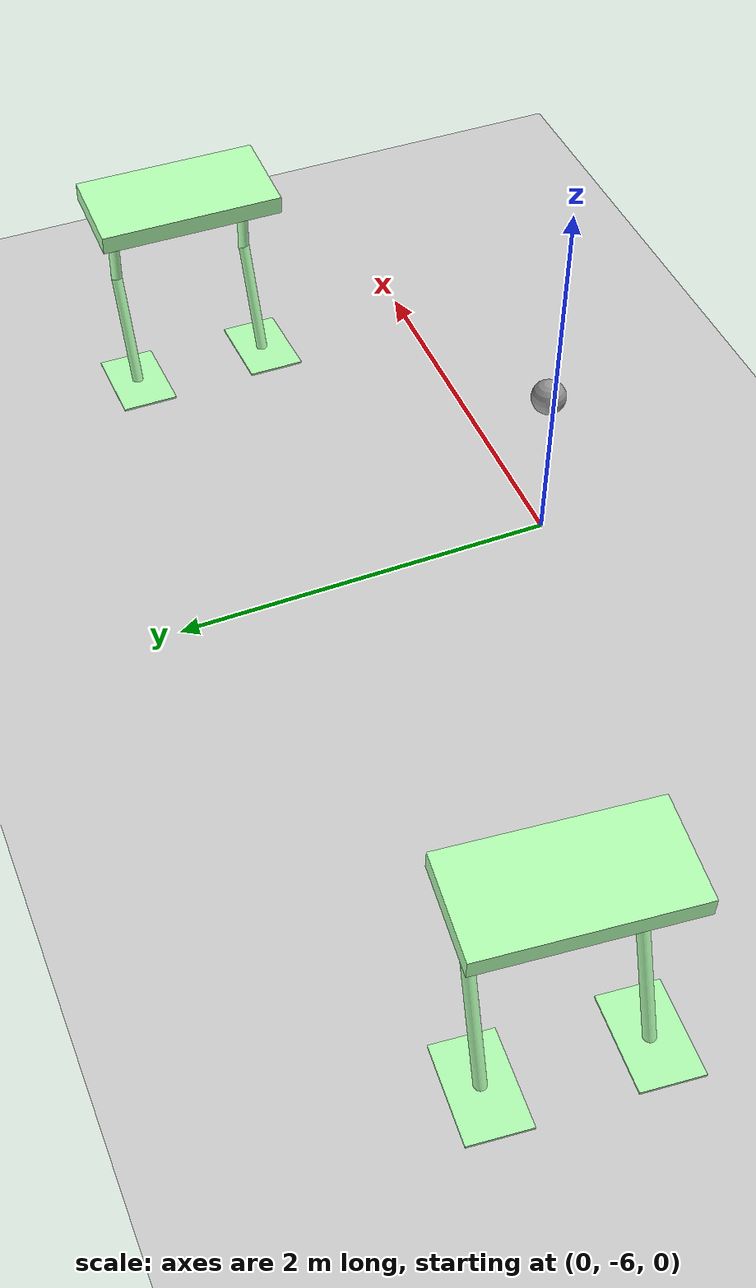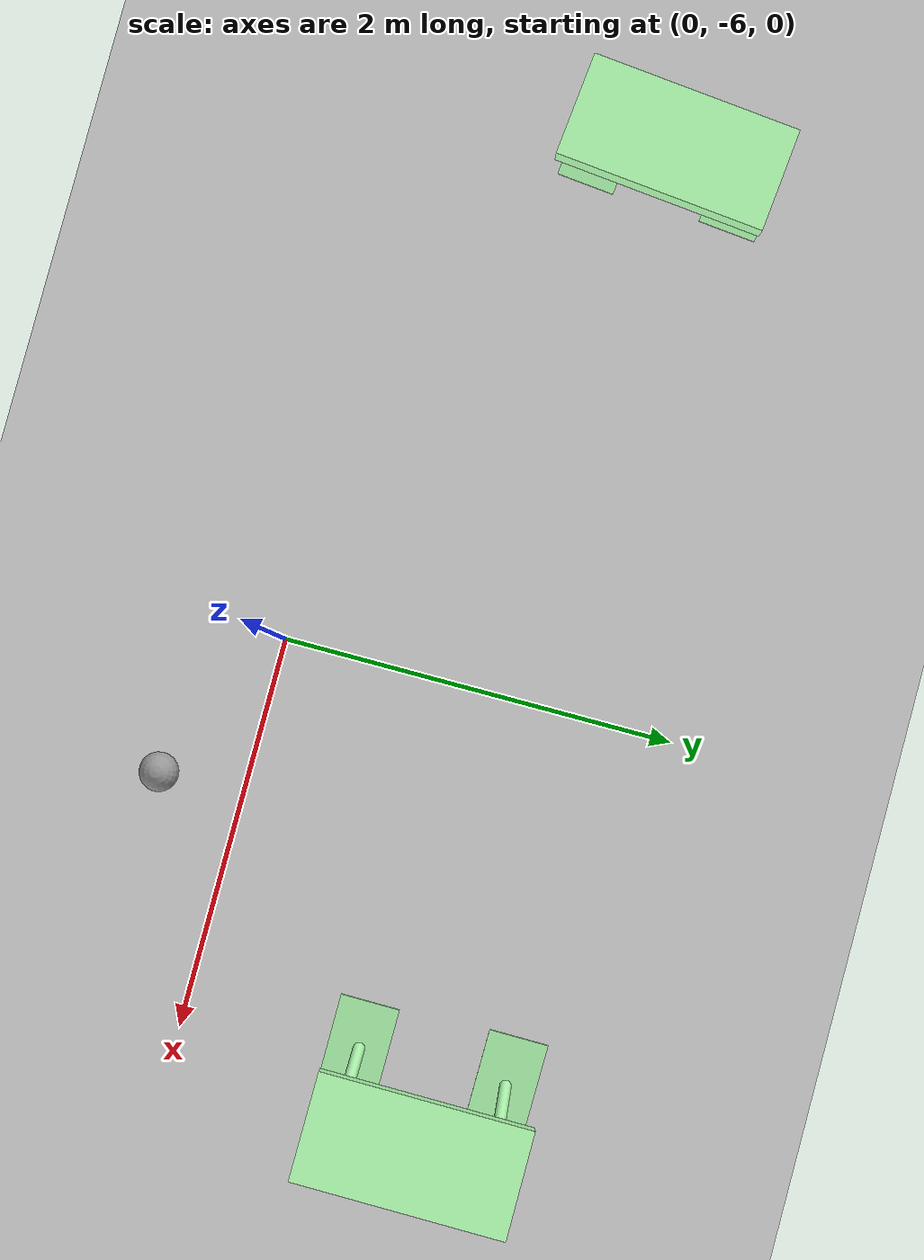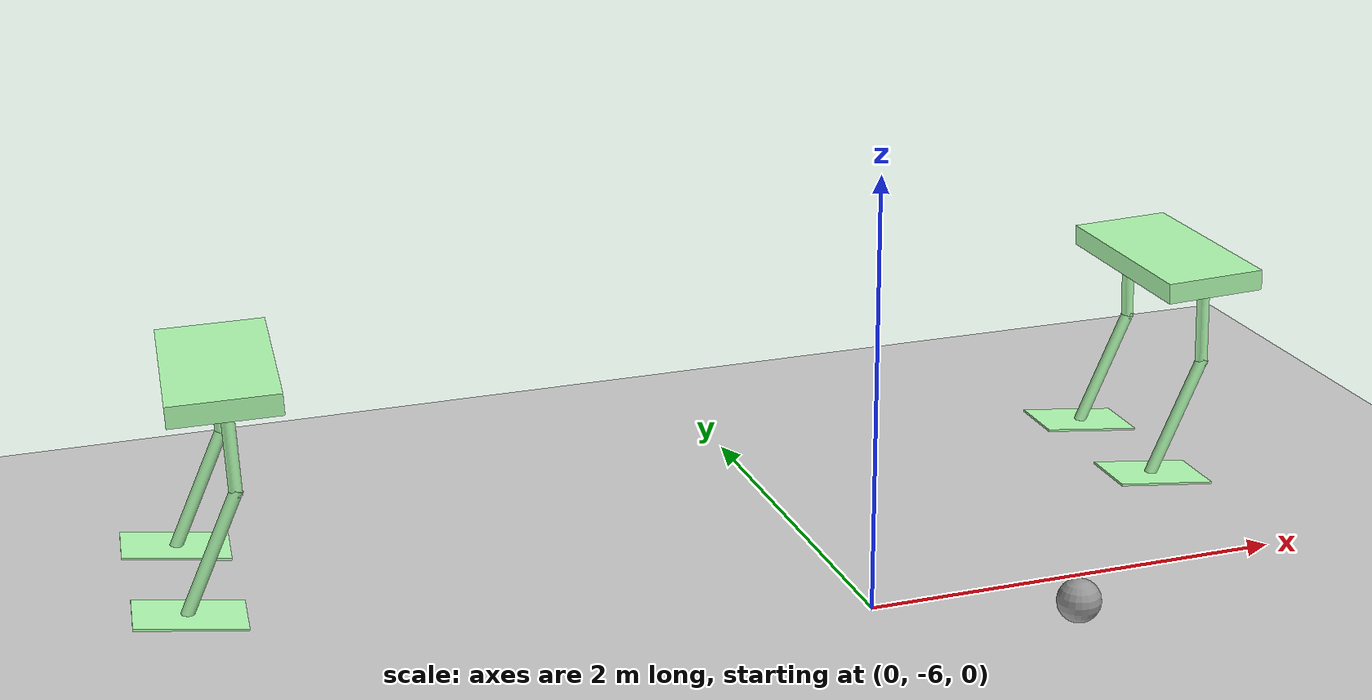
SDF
<sdf version="1.7">
 <world name="default">
  <model name="ground_plane">
   <static>1</static>
   <link name="link">
    <collision name="collision">
     <geometry><plane><normal>0 0 1</normal><size>100 100</size></plane></geometry>
     <surface>
      <contact><collide_bitmask>65535</collide_bitmask></contact>
      <friction><ode><mu>100</mu><mu2>50</mu2></ode></friction>
     </surface>
    </collision>
    <visual name="visual">
     <cast_shadows>0</cast_shadows>
     <geometry><plane><normal>0 0 1</normal><size>100 100</size></plane></geometry>
     <material>
      <script><uri>file://media/materials/scripts/gazebo.material</uri><name>Gazebo/Grey</name></script>
     </material>
    </visual>
   </link>
  </model>
  <model name="HumanoidRobot">
   <link name="link_0">
    <inertial>
     <mass>1</mass>
     <inertia>
      <ixx>0.166667</ixx>
      <ixy>0</ixy>
      <ixz>0</ixz>
      <iyy>0.166667</iyy>
      <iyz>0</iyz>
      <izz>0.166667</izz>
     </inertia>
    </inertial>
    <pose>-0.065088 -0.378675 -0.434007 0 -0 1.5707</pose>
    <visual name="visual">
     <geometry><box><size>0.3 0.5 0.01</size></box></geometry>
     <material>
      <lighting>1</lighting>
      <script><uri>file://media/materials/scripts/gazebo.material</uri><name>Gazebo/Grey</name></script>
      <shader type="pixel"><normal_map>__default__</normal_map></shader>
      <ambient>0.3 1 0.3 1</ambient>
      <diffuse>0.7 1 0.7 1</diffuse>
      <specular>0.01 1 0.01 1</specular>
      <emissive>0 1 0 1</emissive>
     </material>
    </visual>
    <collision name="collision">
     <geometry><box><size>0.3 0.5 0.01</size></box></geometry>
     <surface>
      <friction>
       <ode><mu>1</mu><mu2>1</mu2><fdir1>0 0 0</fdir1><slip1>0</slip1><slip2>0</slip2></ode>
       <torsional>
        <coefficient>1</coefficient>
        <patch_radius>0</patch_radius>
        <surface_radius>0</surface_radius>
        <use_patch_radius>1</use_patch_radius>
        <ode><slip>0</slip></ode>
       </torsional>
      </friction>
      <bounce><restitution_coefficient>0</restitution_coefficient><threshold>1e+06</threshold></bounce>
      <contact>
       <collide_without_contact>0</collide_without_contact>
       <collide_without_contact_bitmask>1</collide_without_contact_bitmask>
       <collide_bitmask>1</collide_bitmask>
       <ode>
        <soft_cfm>0</soft_cfm>
        <soft_erp>0.2</soft_erp>
        <kp>1e+13</kp>
        <kd>1</kd>
        <max_vel>0.01</max_vel>
        <min_depth>0</min_depth>
       </ode>
       <bullet>
        <split_impulse>1</split_impulse>
        <split_impulse_penetration_threshold>-0.01</split_impulse_penetration_threshold>
        <soft_cfm>0</soft_cfm>
        <soft_erp>0.2</soft_erp>
        <kp>1e+13</kp>
        <kd>1</kd>
       </bullet>
      </contact>
     </surface>
    </collision>
   </link>
   <link name="link_0_clone">
    <inertial>
     <mass>1</mass>
     <inertia>
      <ixx>0.166667</ixx>
      <ixy>0</ixy>
      <ixz>0</ixz>
      <iyy>0.166667</iyy>
      <iyz>0</iyz>
      <izz>0.166667</izz>
     </inertia>
    </inertial>
    <pose>-0.09199 0.377512 -0.434007 0 -0 1.5707</pose>
    <visual name="visual">
     <geometry><box><size>0.3 0.5 0.01</size></box></geometry>
     <material>
      <lighting>1</lighting>
      <script><uri>file://media/materials/scripts/gazebo.material</uri><name>Gazebo/Grey</name></script>
      <shader type="pixel"><normal_map>__default__</normal_map></shader>
      <ambient>0.3 1 0.3 1</ambient>
      <diffuse>0.7 1 0.7 1</diffuse>
      <specular>0.01 1 0.01 1</specular>
      <emissive>0 1 0 1</emissive>
     </material>
    </visual>
    <collision name="collision">
     <geometry><box><size>0.3 0.5 0.01</size></box></geometry>
     <surface>
      <friction>
       <ode><mu>1</mu><mu2>1</mu2><fdir1>0 0 0</fdir1><slip1>0</slip1><slip2>0</slip2></ode>
       <torsional>
        <coefficient>1</coefficient>
        <patch_radius>0</patch_radius>
        <surface_radius>0</surface_radius>
        <use_patch_radius>1</use_patch_radius>
        <ode><slip>0</slip></ode>
       </torsional>
      </friction>
      <bounce><restitution_coefficient>0</restitution_coefficient><threshold>1e+06</threshold></bounce>
      <contact>
       <collide_without_contact>0</collide_without_contact>
       <collide_without_contact_bitmask>1</collide_without_contact_bitmask>
       <collide_bitmask>1</collide_bitmask>
       <ode>
        <soft_cfm>0</soft_cfm>
        <soft_erp>0.2</soft_erp>
        <kp>1e+13</kp>
        <kd>1</kd>
        <max_vel>0.01</max_vel>
        <min_depth>0</min_depth>
       </ode>
       <bullet>
        <split_impulse>1</split_impulse>
        <split_impulse_penetration_threshold>-0.01</split_impulse_penetration_threshold>
        <soft_cfm>0</soft_cfm>
        <soft_erp>0.2</soft_erp>
        <kp>1e+13</kp>
        <kd>1</kd>
       </bullet>
      </contact>
     </surface>
    </collision>
   </link>
   <link name="link_1">
    <inertial>
     <mass>1</mass>
     <inertia><ixx>0.145833</ixx><ixy>0</ixy><ixz>0</ixz><iyy>0.145833</iyy><iyz>0</iyz><izz>0.125</izz></inertia>
    </inertial>
    <pose>0.013192 -0.372488 -0.14743 0 0.3 0</pose>
    <visual name="visual">
     <geometry><cylinder><radius>0.03</radius><length>0.65</length></cylinder></geometry>
     <material>
      <lighting>1</lighting>
      <script><uri>file://media/materials/scripts/gazebo.material</uri><name>Gazebo/Grey</name></script>
      <shader type="pixel"><normal_map>__default__</normal_map></shader>
      <ambient>0.3 1 0.3 1</ambient>
      <diffuse>0.7 1 0.7 1</diffuse>
      <specular>0.01 1 0.01 1</specular>
      <emissive>0 1 0 1</emissive>
     </material>
    </visual>
    <collision name="collision">
     <geometry><cylinder><radius>0.03</radius><length>0.65</length></cylinder></geometry>
     <surface>
      <friction>
       <ode><mu>1</mu><mu2>1</mu2><fdir1>0 0 0</fdir1><slip1>0</slip1><slip2>0</slip2></ode>
       <torsional>
        <coefficient>1</coefficient>
        <patch_radius>0</patch_radius>
        <surface_radius>0</surface_radius>
        <use_patch_radius>1</use_patch_radius>
        <ode><slip>0</slip></ode>
       </torsional>
      </friction>
      <bounce><restitution_coefficient>0</restitution_coefficient><threshold>1e+06</threshold></bounce>
      <contact>
       <collide_without_contact>0</collide_without_contact>
       <collide_without_contact_bitmask>1</collide_without_contact_bitmask>
       <collide_bitmask>1</collide_bitmask>
       <ode>
        <soft_cfm>0</soft_cfm>
        <soft_erp>0.2</soft_erp>
        <kp>1e+13</kp>
        <kd>1</kd>
        <max_vel>0.01</max_vel>
        <min_depth>0</min_depth>
       </ode>
       <bullet>
        <split_impulse>1</split_impulse>
        <split_impulse_penetration_threshold>-0.01</split_impulse_penetration_threshold>
        <soft_cfm>0</soft_cfm>
        <soft_erp>0.2</soft_erp>
        <kp>1e+13</kp>
        <kd>1</kd>
       </bullet>
      </contact>
     </surface>
    </collision>
   </link>
   <link name="link_1_clone">
    <inertial>
     <mass>1</mass>
     <inertia><ixx>0.145833</ixx><ixy>0</ixy><ixz>0</ixz><iyy>0.145833</iyy><iyz>0</iyz><izz>0.125</izz></inertia>
    </inertial>
    <pose>-0.000905 0.377512 -0.148984 0 0.3 0</pose>
    <visual name="visual">
     <geometry><cylinder><radius>0.03</radius><length>0.65</length></cylinder></geometry>
     <material>
      <lighting>1</lighting>
      <script><uri>file://media/materials/scripts/gazebo.material</uri><name>Gazebo/Grey</name></script>
      <shader type="pixel"><normal_map>__default__</normal_map></shader>
      <ambient>0.3 1 0.3 1</ambient>
      <diffuse>0.7 1 0.7 1</diffuse>
      <specular>0.01 1 0.01 1</specular>
      <emissive>0 1 0 1</emissive>
     </material>
    </visual>
    <collision name="collision">
     <geometry><cylinder><radius>0.03</radius><length>0.65</length></cylinder></geometry>
     <surface>
      <friction>
       <ode><mu>1</mu><mu2>1</mu2><fdir1>0 0 0</fdir1><slip1>0</slip1><slip2>0</slip2></ode>
       <torsional>
        <coefficient>1</coefficient>
        <patch_radius>0</patch_radius>
        <surface_radius>0</surface_radius>
        <use_patch_radius>1</use_patch_radius>
        <ode><slip>0</slip></ode>
       </torsional>
      </friction>
      <bounce><restitution_coefficient>0</restitution_coefficient><threshold>1e+06</threshold></bounce>
      <contact>
       <collide_without_contact>0</collide_without_contact>
       <collide_without_contact_bitmask>1</collide_without_contact_bitmask>
       <collide_bitmask>1</collide_bitmask>
       <ode>
        <soft_cfm>0</soft_cfm>
        <soft_erp>0.2</soft_erp>
        <kp>1e+13</kp>
        <kd>1</kd>
        <max_vel>0.01</max_vel>
        <min_depth>0</min_depth>
       </ode>
       <bullet>
        <split_impulse>1</split_impulse>
        <split_impulse_penetration_threshold>-0.01</split_impulse_penetration_threshold>
        <soft_cfm>0</soft_cfm>
        <soft_erp>0.2</soft_erp>
        <kp>1e+13</kp>
        <kd>1</kd>
       </bullet>
      </contact>
     </surface>
    </collision>
   </link>
   <link name="link_1_clone_0">
    <inertial>
     <mass>1</mass>
     <inertia><ixx>0.145833</ixx><ixy>0</ixy><ixz>0</ixz><iyy>0.145833</iyy><iyz>0</iyz><izz>0.125</izz></inertia>
    </inertial>
    <pose>0.077052 -0.370832 0.330686 0 -0.15 0</pose>
    <visual name="visual">
     <geometry><cylinder><radius>0.03</radius><length>0.4</length></cylinder></geometry>
     <material>
      <lighting>1</lighting>
      <script><uri>file://media/materials/scripts/gazebo.material</uri><name>Gazebo/Grey</name></script>
      <shader type="pixel"><normal_map>__default__</normal_map></shader>
      <ambient>0.3 1 0.3 1</ambient>
      <diffuse>0.7 1 0.7 1</diffuse>
      <specular>0.01 1 0.01 1</specular>
      <emissive>0 1 0 1</emissive>
     </material>
    </visual>
    <collision name="collision">
     <geometry><cylinder><radius>0.03</radius><length>0.4</length></cylinder></geometry>
     <surface>
      <friction>
       <ode><mu>1</mu><mu2>1</mu2><fdir1>0 0 0</fdir1><slip1>0</slip1><slip2>0</slip2></ode>
       <torsional>
        <coefficient>1</coefficient>
        <patch_radius>0</patch_radius>
        <surface_radius>0</surface_radius>
        <use_patch_radius>1</use_patch_radius>
        <ode><slip>0</slip></ode>
       </torsional>
      </friction>
      <bounce><restitution_coefficient>0</restitution_coefficient><threshold>1e+06</threshold></bounce>
      <contact>
       <collide_without_contact>0</collide_without_contact>
       <collide_without_contact_bitmask>1</collide_without_contact_bitmask>
       <collide_bitmask>1</collide_bitmask>
       <ode>
        <soft_cfm>0</soft_cfm>
        <soft_erp>0.2</soft_erp>
        <kp>1e+13</kp>
        <kd>1</kd>
        <max_vel>0.01</max_vel>
        <min_depth>0</min_depth>
       </ode>
       <bullet>
        <split_impulse>1</split_impulse>
        <split_impulse_penetration_threshold>-0.01</split_impulse_penetration_threshold>
        <soft_cfm>0</soft_cfm>
        <soft_erp>0.2</soft_erp>
        <kp>1e+13</kp>
        <kd>1</kd>
       </bullet>
      </contact>
     </surface>
    </collision>
   </link>
   <link name="link_1_clone_0_clone">
    <inertial>
     <mass>1</mass>
     <inertia><ixx>0.145833</ixx><ixy>0</ixy><ixz>0</ixz><iyy>0.145833</iyy><iyz>0</iyz><izz>0.125</izz></inertia>
    </inertial>
    <pose>0.061622 0.377512 0.329192 0 -0.15 0</pose>
    <visual name="visual">
     <geometry><cylinder><radius>0.03</radius><length>0.4</length></cylinder></geometry>
     <material>
      <lighting>1</lighting>
      <script><uri>file://media/materials/scripts/gazebo.material</uri><name>Gazebo/Grey</name></script>
      <shader type="pixel"><normal_map>__default__</normal_map></shader>
      <ambient>0.3 1 0.3 1</ambient>
      <diffuse>0.7 1 0.7 1</diffuse>
      <specular>0.01 1 0.01 1</specular>
      <emissive>0 1 0 1</emissive>
     </material>
    </visual>
    <collision name="collision">
     <geometry><cylinder><radius>0.03</radius><length>0.4</length></cylinder></geometry>
     <surface>
      <friction>
       <ode><mu>1</mu><mu2>1</mu2><fdir1>0 0 0</fdir1><slip1>0</slip1><slip2>0</slip2></ode>
       <torsional>
        <coefficient>1</coefficient>
        <patch_radius>0</patch_radius>
        <surface_radius>0</surface_radius>
        <use_patch_radius>1</use_patch_radius>
        <ode><slip>0</slip></ode>
       </torsional>
      </friction>
      <bounce><restitution_coefficient>0</restitution_coefficient><threshold>1e+06</threshold></bounce>
      <contact>
       <collide_without_contact>0</collide_without_contact>
       <collide_without_contact_bitmask>1</collide_without_contact_bitmask>
       <collide_bitmask>1</collide_bitmask>
       <ode>
        <soft_cfm>0</soft_cfm>
        <soft_erp>0.2</soft_erp>
        <kp>1e+13</kp>
        <kd>1</kd>
        <max_vel>0.01</max_vel>
        <min_depth>0</min_depth>
       </ode>
       <bullet>
        <split_impulse>1</split_impulse>
        <split_impulse_penetration_threshold>-0.01</split_impulse_penetration_threshold>
        <soft_cfm>0</soft_cfm>
        <soft_erp>0.2</soft_erp>
        <kp>1e+13</kp>
        <kd>1</kd>
       </bullet>
      </contact>
     </surface>
    </collision>
   </link>
   <link name="link_2">
    <inertial>
     <mass>1</mass>
     <inertia>
      <ixx>0.166667</ixx>
      <ixy>0</ixy>
      <ixz>0</ixz>
      <iyy>0.166667</iyy>
      <iyz>0</iyz>
      <izz>0.166667</izz>
     </inertia>
    </inertial>
    <pose>0.028263 -0.01054 0.576151 0 -0.149993 0</pose>
    <visual name="visual">
     <geometry><box><size>0.5 1 0.1</size></box></geometry>
     <material>
      <lighting>1</lighting>
      <script><uri>file://media/materials/scripts/gazebo.material</uri><name>Gazebo/Grey</name></script>
      <shader type="pixel"><normal_map>__default__</normal_map></shader>
      <ambient>0.3 1 0.3 1</ambient>
      <diffuse>0.7 1 0.7 1</diffuse>
      <specular>0.01 1 0.01 1</specular>
      <emissive>0 0 0 1</emissive>
     </material>
    </visual>
    <collision name="collision">
     <geometry><box><size>0.5 1 0.05</size></box></geometry>
     <surface>
      <friction>
       <ode><mu>1</mu><mu2>1</mu2><fdir1>0 0 0</fdir1><slip1>0</slip1><slip2>0</slip2></ode>
       <torsional>
        <coefficient>1</coefficient>
        <patch_radius>0</patch_radius>
        <surface_radius>0</surface_radius>
        <use_patch_radius>1</use_patch_radius>
        <ode><slip>0</slip></ode>
       </torsional>
      </friction>
      <bounce><restitution_coefficient>0</restitution_coefficient><threshold>1e+06</threshold></bounce>
      <contact>
       <collide_without_contact>0</collide_without_contact>
       <collide_without_contact_bitmask>1</collide_without_contact_bitmask>
       <collide_bitmask>1</collide_bitmask>
       <ode>
        <soft_cfm>0</soft_cfm>
        <soft_erp>0.2</soft_erp>
        <kp>1e+13</kp>
        <kd>1</kd>
        <max_vel>0.01</max_vel>
        <min_depth>0</min_depth>
       </ode>
       <bullet>
        <split_impulse>1</split_impulse>
        <split_impulse_penetration_threshold>-0.01</split_impulse_penetration_threshold>
        <soft_cfm>0</soft_cfm>
        <soft_erp>0.2</soft_erp>
        <kp>1e+13</kp>
        <kd>1</kd>
       </bullet>
      </contact>
     </surface>
    </collision>
   </link>
   <joint name="link_0_JOINT_0" type="fixed">
    <parent>link_0</parent>
    <child>link_1</child>
    <physics>
     <ode><limit><cfm>0</cfm><erp>0.2</erp></limit><suspension><cfm>0</cfm><erp>0.2</erp></suspension></ode>
    </physics>
   </joint>
   <joint name="link_0_clone_JOINT_1" type="fixed">
    <parent>link_0_clone</parent>
    <child>link_1_clone</child>
    <physics>
     <ode><limit><cfm>0</cfm><erp>0.2</erp></limit><suspension><cfm>0</cfm><erp>0.2</erp></suspension></ode>
    </physics>
   </joint>
   <joint name="link_1_JOINT_2" type="fixed">
    <parent>link_1</parent>
    <child>link_1_clone_0</child>
    <physics>
     <ode><limit><cfm>0</cfm><erp>0.2</erp></limit><suspension><cfm>0</cfm><erp>0.2</erp></suspension></ode>
    </physics>
   </joint>
   <joint name="link_1_clone_JOINT_3" type="fixed">
    <parent>link_1_clone</parent>
    <child>link_1_clone_0_clone</child>
    <physics>
     <ode><limit><cfm>0</cfm><erp>0.2</erp></limit><suspension><cfm>0</cfm><erp>0.2</erp></suspension></ode>
    </physics>
   </joint>
   <joint name="link_2_JOINT_5" type="fixed">
    <parent>link_2</parent>
    <child>link_1_clone_0_clone</child>
    <physics>
     <ode><limit><cfm>0</cfm><erp>0.2</erp></limit><suspension><cfm>0</cfm><erp>0.2</erp></suspension></ode>
    </physics>
   </joint>
   <joint name="link_2_JOINT_6" type="fixed">
    <parent>link_2</parent>
    <child>link_1_clone_0</child>
    <physics>
     <ode><limit><cfm>0</cfm><erp>0.2</erp></limit><suspension><cfm>0</cfm><erp>0.2</erp></suspension></ode>
    </physics>
   </joint>
   <static>0</static>
   <pose>-2.72379 -4.75242 0.457378 -0.000108 0.115577 -0.101636</pose>
  </model>
  <model name="HumanoidRobot_0">
   <link name="link_0">
    <inertial>
     <mass>1</mass>
     <inertia>
      <ixx>0.166667</ixx>
      <ixy>0</ixy>
      <ixz>0</ixz>
      <iyy>0.166667</iyy>
      <iyz>0</iyz>
      <izz>0.166667</izz>
     </inertia>
    </inertial>
    <pose>-0.065088 -0.378675 -0.434007 0 -0 1.5707</pose>
    <visual name="visual">
     <geometry><box><size>0.3 0.5 0.01</size></box></geometry>
     <material>
      <lighting>1</lighting>
      <script><uri>file://media/materials/scripts/gazebo.material</uri><name>Gazebo/Grey</name></script>
      <shader type="pixel"><normal_map>__default__</normal_map></shader>
      <ambient>0.3 1 0.3 1</ambient>
      <diffuse>0.7 1 0.7 1</diffuse>
      <specular>0.01 1 0.01 1</specular>
      <emissive>0 1 0 1</emissive>
     </material>
    </visual>
    <collision name="collision">
     <geometry><box><size>0.3 0.5 0.01</size></box></geometry>
     <surface>
      <friction>
       <ode><mu>1</mu><mu2>1</mu2><fdir1>0 0 0</fdir1><slip1>0</slip1><slip2>0</slip2></ode>
       <torsional>
        <coefficient>1</coefficient>
        <patch_radius>0</patch_radius>
        <surface_radius>0</surface_radius>
        <use_patch_radius>1</use_patch_radius>
        <ode><slip>0</slip></ode>
       </torsional>
      </friction>
      <bounce><restitution_coefficient>0</restitution_coefficient><threshold>1e+06</threshold></bounce>
      <contact>
       <collide_without_contact>0</collide_without_contact>
       <collide_without_contact_bitmask>1</collide_without_contact_bitmask>
       <collide_bitmask>1</collide_bitmask>
       <ode>
        <soft_cfm>0</soft_cfm>
        <soft_erp>0.2</soft_erp>
        <kp>1e+13</kp>
        <kd>1</kd>
        <max_vel>0.01</max_vel>
        <min_depth>0</min_depth>
       </ode>
       <bullet>
        <split_impulse>1</split_impulse>
        <split_impulse_penetration_threshold>-0.01</split_impulse_penetration_threshold>
        <soft_cfm>0</soft_cfm>
        <soft_erp>0.2</soft_erp>
        <kp>1e+13</kp>
        <kd>1</kd>
       </bullet>
      </contact>
     </surface>
    </collision>
   </link>
   <link name="link_0_clone">
    <inertial>
     <mass>1</mass>
     <inertia>
      <ixx>0.166667</ixx>
      <ixy>0</ixy>
      <ixz>0</ixz>
      <iyy>0.166667</iyy>
      <iyz>0</iyz>
      <izz>0.166667</izz>
     </inertia>
    </inertial>
    <pose>-0.09199 0.377512 -0.434007 0 -0 1.5707</pose>
    <visual name="visual">
     <geometry><box><size>0.3 0.5 0.01</size></box></geometry>
     <material>
      <lighting>1</lighting>
      <script><uri>file://media/materials/scripts/gazebo.material</uri><name>Gazebo/Grey</name></script>
      <shader type="pixel"><normal_map>__default__</normal_map></shader>
      <ambient>0.3 1 0.3 1</ambient>
      <diffuse>0.7 1 0.7 1</diffuse>
      <specular>0.01 1 0.01 1</specular>
      <emissive>0 1 0 1</emissive>
     </material>
    </visual>
    <collision name="collision">
     <geometry><box><size>0.3 0.5 0.01</size></box></geometry>
     <surface>
      <friction>
       <ode><mu>1</mu><mu2>1</mu2><fdir1>0 0 0</fdir1><slip1>0</slip1><slip2>0</slip2></ode>
       <torsional>
        <coefficient>1</coefficient>
        <patch_radius>0</patch_radius>
        <surface_radius>0</surface_radius>
        <use_patch_radius>1</use_patch_radius>
        <ode><slip>0</slip></ode>
       </torsional>
      </friction>
      <bounce><restitution_coefficient>0</restitution_coefficient><threshold>1e+06</threshold></bounce>
      <contact>
       <collide_without_contact>0</collide_without_contact>
       <collide_without_contact_bitmask>1</collide_without_contact_bitmask>
       <collide_bitmask>1</collide_bitmask>
       <ode>
        <soft_cfm>0</soft_cfm>
        <soft_erp>0.2</soft_erp>
        <kp>1e+13</kp>
        <kd>1</kd>
        <max_vel>0.01</max_vel>
        <min_depth>0</min_depth>
       </ode>
       <bullet>
        <split_impulse>1</split_impulse>
        <split_impulse_penetration_threshold>-0.01</split_impulse_penetration_threshold>
        <soft_cfm>0</soft_cfm>
        <soft_erp>0.2</soft_erp>
        <kp>1e+13</kp>
        <kd>1</kd>
       </bullet>
      </contact>
     </surface>
    </collision>
   </link>
   <link name="link_1">
    <inertial>
     <mass>1</mass>
     <inertia><ixx>0.145833</ixx><ixy>0</ixy><ixz>0</ixz><iyy>0.145833</iyy><iyz>0</iyz><izz>0.125</izz></inertia>
    </inertial>
    <pose>0.013192 -0.372488 -0.14743 0 0.3 0</pose>
    <visual name="visual">
     <geometry><cylinder><radius>0.03</radius><length>0.65</length></cylinder></geometry>
     <material>
      <lighting>1</lighting>
      <script><uri>file://media/materials/scripts/gazebo.material</uri><name>Gazebo/Grey</name></script>
      <shader type="pixel"><normal_map>__default__</normal_map></shader>
      <ambient>0.3 1 0.3 1</ambient>
      <diffuse>0.7 1 0.7 1</diffuse>
      <specular>0.01 1 0.01 1</specular>
      <emissive>0 1 0 1</emissive>
     </material>
    </visual>
    <collision name="collision">
     <geometry><cylinder><radius>0.03</radius><length>0.65</length></cylinder></geometry>
     <surface>
      <friction>
       <ode><mu>1</mu><mu2>1</mu2><fdir1>0 0 0</fdir1><slip1>0</slip1><slip2>0</slip2></ode>
       <torsional>
        <coefficient>1</coefficient>
        <patch_radius>0</patch_radius>
        <surface_radius>0</surface_radius>
        <use_patch_radius>1</use_patch_radius>
        <ode><slip>0</slip></ode>
       </torsional>
      </friction>
      <bounce><restitution_coefficient>0</restitution_coefficient><threshold>1e+06</threshold></bounce>
      <contact>
       <collide_without_contact>0</collide_without_contact>
       <collide_without_contact_bitmask>1</collide_without_contact_bitmask>
       <collide_bitmask>1</collide_bitmask>
       <ode>
        <soft_cfm>0</soft_cfm>
        <soft_erp>0.2</soft_erp>
        <kp>1e+13</kp>
        <kd>1</kd>
        <max_vel>0.01</max_vel>
        <min_depth>0</min_depth>
       </ode>
       <bullet>
        <split_impulse>1</split_impulse>
        <split_impulse_penetration_threshold>-0.01</split_impulse_penetration_threshold>
        <soft_cfm>0</soft_cfm>
        <soft_erp>0.2</soft_erp>
        <kp>1e+13</kp>
        <kd>1</kd>
       </bullet>
      </contact>
     </surface>
    </collision>
   </link>
   <link name="link_1_clone">
    <inertial>
     <mass>1</mass>
     <inertia><ixx>0.145833</ixx><ixy>0</ixy><ixz>0</ixz><iyy>0.145833</iyy><iyz>0</iyz><izz>0.125</izz></inertia>
    </inertial>
    <pose>-0.000905 0.377512 -0.148984 0 0.3 0</pose>
    <visual name="visual">
     <geometry><cylinder><radius>0.03</radius><length>0.65</length></cylinder></geometry>
     <material>
      <lighting>1</lighting>
      <script><uri>file://media/materials/scripts/gazebo.material</uri><name>Gazebo/Grey</name></script>
      <shader type="pixel"><normal_map>__default__</normal_map></shader>
      <ambient>0.3 1 0.3 1</ambient>
      <diffuse>0.7 1 0.7 1</diffuse>
      <specular>0.01 1 0.01 1</specular>
      <emissive>0 1 0 1</emissive>
     </material>
    </visual>
    <collision name="collision">
     <geometry><cylinder><radius>0.03</radius><length>0.65</length></cylinder></geometry>
     <surface>
      <friction>
       <ode><mu>1</mu><mu2>1</mu2><fdir1>0 0 0</fdir1><slip1>0</slip1><slip2>0</slip2></ode>
       <torsional>
        <coefficient>1</coefficient>
        <patch_radius>0</patch_radius>
        <surface_radius>0</surface_radius>
        <use_patch_radius>1</use_patch_radius>
        <ode><slip>0</slip></ode>
       </torsional>
      </friction>
      <bounce><restitution_coefficient>0</restitution_coefficient><threshold>1e+06</threshold></bounce>
      <contact>
       <collide_without_contact>0</collide_without_contact>
       <collide_without_contact_bitmask>1</collide_without_contact_bitmask>
       <collide_bitmask>1</collide_bitmask>
       <ode>
        <soft_cfm>0</soft_cfm>
        <soft_erp>0.2</soft_erp>
        <kp>1e+13</kp>
        <kd>1</kd>
        <max_vel>0.01</max_vel>
        <min_depth>0</min_depth>
       </ode>
       <bullet>
        <split_impulse>1</split_impulse>
        <split_impulse_penetration_threshold>-0.01</split_impulse_penetration_threshold>
        <soft_cfm>0</soft_cfm>
        <soft_erp>0.2</soft_erp>
        <kp>1e+13</kp>
        <kd>1</kd>
       </bullet>
      </contact>
     </surface>
    </collision>
   </link>
   <link name="link_1_clone_0">
    <inertial>
     <mass>1</mass>
     <inertia><ixx>0.145833</ixx><ixy>0</ixy><ixz>0</ixz><iyy>0.145833</iyy><iyz>0</iyz><izz>0.125</izz></inertia>
    </inertial>
    <pose>0.077052 -0.370832 0.330686 0 -0.15 0</pose>
    <visual name="visual">
     <geometry><cylinder><radius>0.03</radius><length>0.4</length></cylinder></geometry>
     <material>
      <lighting>1</lighting>
      <script><uri>file://media/materials/scripts/gazebo.material</uri><name>Gazebo/Grey</name></script>
      <shader type="pixel"><normal_map>__default__</normal_map></shader>
      <ambient>0.3 1 0.3 1</ambient>
      <diffuse>0.7 1 0.7 1</diffuse>
      <specular>0.01 1 0.01 1</specular>
      <emissive>0 1 0 1</emissive>
     </material>
    </visual>
    <collision name="collision">
     <geometry><cylinder><radius>0.03</radius><length>0.4</length></cylinder></geometry>
     <surface>
      <friction>
       <ode><mu>1</mu><mu2>1</mu2><fdir1>0 0 0</fdir1><slip1>0</slip1><slip2>0</slip2></ode>
       <torsional>
        <coefficient>1</coefficient>
        <patch_radius>0</patch_radius>
        <surface_radius>0</surface_radius>
        <use_patch_radius>1</use_patch_radius>
        <ode><slip>0</slip></ode>
       </torsional>
      </friction>
      <bounce><restitution_coefficient>0</restitution_coefficient><threshold>1e+06</threshold></bounce>
      <contact>
       <collide_without_contact>0</collide_without_contact>
       <collide_without_contact_bitmask>1</collide_without_contact_bitmask>
       <collide_bitmask>1</collide_bitmask>
       <ode>
        <soft_cfm>0</soft_cfm>
        <soft_erp>0.2</soft_erp>
        <kp>1e+13</kp>
        <kd>1</kd>
        <max_vel>0.01</max_vel>
        <min_depth>0</min_depth>
       </ode>
       <bullet>
        <split_impulse>1</split_impulse>
        <split_impulse_penetration_threshold>-0.01</split_impulse_penetration_threshold>
        <soft_cfm>0</soft_cfm>
        <soft_erp>0.2</soft_erp>
        <kp>1e+13</kp>
        <kd>1</kd>
       </bullet>
      </contact>
     </surface>
    </collision>
   </link>
   <link name="link_1_clone_0_clone">
    <inertial>
     <mass>1</mass>
     <inertia><ixx>0.145833</ixx><ixy>0</ixy><ixz>0</ixz><iyy>0.145833</iyy><iyz>0</iyz><izz>0.125</izz></inertia>
    </inertial>
    <pose>0.061622 0.377512 0.329192 0 -0.15 0</pose>
    <visual name="visual">
     <geometry><cylinder><radius>0.03</radius><length>0.4</length></cylinder></geometry>
     <material>
      <lighting>1</lighting>
      <script><uri>file://media/materials/scripts/gazebo.material</uri><name>Gazebo/Grey</name></script>
      <shader type="pixel"><normal_map>__default__</normal_map></shader>
      <ambient>0.3 1 0.3 1</ambient>
      <diffuse>0.7 1 0.7 1</diffuse>
      <specular>0.01 1 0.01 1</specular>
      <emissive>0 1 0 1</emissive>
     </material>
    </visual>
    <collision name="collision">
     <geometry><cylinder><radius>0.03</radius><length>0.4</length></cylinder></geometry>
     <surface>
      <friction>
       <ode><mu>1</mu><mu2>1</mu2><fdir1>0 0 0</fdir1><slip1>0</slip1><slip2>0</slip2></ode>
       <torsional>
        <coefficient>1</coefficient>
        <patch_radius>0</patch_radius>
        <surface_radius>0</surface_radius>
        <use_patch_radius>1</use_patch_radius>
        <ode><slip>0</slip></ode>
       </torsional>
      </friction>
      <bounce><restitution_coefficient>0</restitution_coefficient><threshold>1e+06</threshold></bounce>
      <contact>
       <collide_without_contact>0</collide_without_contact>
       <collide_without_contact_bitmask>1</collide_without_contact_bitmask>
       <collide_bitmask>1</collide_bitmask>
       <ode>
        <soft_cfm>0</soft_cfm>
        <soft_erp>0.2</soft_erp>
        <kp>1e+13</kp>
        <kd>1</kd>
        <max_vel>0.01</max_vel>
        <min_depth>0</min_depth>
       </ode>
       <bullet>
        <split_impulse>1</split_impulse>
        <split_impulse_penetration_threshold>-0.01</split_impulse_penetration_threshold>
        <soft_cfm>0</soft_cfm>
        <soft_erp>0.2</soft_erp>
        <kp>1e+13</kp>
        <kd>1</kd>
       </bullet>
      </contact>
     </surface>
    </collision>
   </link>
   <link name="link_2">
    <inertial>
     <mass>1</mass>
     <inertia>
      <ixx>0.166667</ixx>
      <ixy>0</ixy>
      <ixz>0</ixz>
      <iyy>0.166667</iyy>
      <iyz>0</iyz>
      <izz>0.166667</izz>
     </inertia>
    </inertial>
    <pose>0.028263 -0.01054 0.576151 0 -0.149993 0</pose>
    <visual name="visual">
     <geometry><box><size>0.5 1 0.1</size></box></geometry>
     <material>
      <lighting>1</lighting>
      <script><uri>file://media/materials/scripts/gazebo.material</uri><name>Gazebo/Grey</name></script>
      <shader type="pixel"><normal_map>__default__</normal_map></shader>
      <ambient>0.3 1 0.3 1</ambient>
      <diffuse>0.7 1 0.7 1</diffuse>
      <specular>0.01 1 0.01 1</specular>
      <emissive>0 0 0 1</emissive>
     </material>
    </visual>
    <collision name="collision">
     <geometry><box><size>0.5 1 0.05</size></box></geometry>
     <surface>
      <friction>
       <ode><mu>1</mu><mu2>1</mu2><fdir1>0 0 0</fdir1><slip1>0</slip1><slip2>0</slip2></ode>
       <torsional>
        <coefficient>1</coefficient>
        <patch_radius>0</patch_radius>
        <surface_radius>0</surface_radius>
        <use_patch_radius>1</use_patch_radius>
        <ode><slip>0</slip></ode>
       </torsional>
      </friction>
      <bounce><restitution_coefficient>0</restitution_coefficient><threshold>1e+06</threshold></bounce>
      <contact>
       <collide_without_contact>0</collide_without_contact>
       <collide_without_contact_bitmask>1</collide_without_contact_bitmask>
       <collide_bitmask>1</collide_bitmask>
       <ode>
        <soft_cfm>0</soft_cfm>
        <soft_erp>0.2</soft_erp>
        <kp>1e+13</kp>
        <kd>1</kd>
        <max_vel>0.01</max_vel>
        <min_depth>0</min_depth>
       </ode>
       <bullet>
        <split_impulse>1</split_impulse>
        <split_impulse_penetration_threshold>-0.01</split_impulse_penetration_threshold>
        <soft_cfm>0</soft_cfm>
        <soft_erp>0.2</soft_erp>
        <kp>1e+13</kp>
        <kd>1</kd>
       </bullet>
      </contact>
     </surface>
    </collision>
   </link>
   <joint name="link_0_JOINT_0" type="fixed">
    <parent>link_0</parent>
    <child>link_1</child>
    <physics>
     <ode><limit><cfm>0</cfm><erp>0.2</erp></limit><suspension><cfm>0</cfm><erp>0.2</erp></suspension></ode>
    </physics>
   </joint>
   <joint name="link_0_clone_JOINT_1" type="fixed">
    <parent>link_0_clone</parent>
    <child>link_1_clone</child>
    <physics>
     <ode><limit><cfm>0</cfm><erp>0.2</erp></limit><suspension><cfm>0</cfm><erp>0.2</erp></suspension></ode>
    </physics>
   </joint>
   <joint name="link_1_JOINT_2" type="fixed">
    <parent>link_1</parent>
    <child>link_1_clone_0</child>
    <physics>
     <ode><limit><cfm>0</cfm><erp>0.2</erp></limit><suspension><cfm>0</cfm><erp>0.2</erp></suspension></ode>
    </physics>
   </joint>
   <joint name="link_1_clone_JOINT_3" type="fixed">
    <parent>link_1_clone</parent>
    <child>link_1_clone_0_clone</child>
    <physics>
     <ode><limit><cfm>0</cfm><erp>0.2</erp></limit><suspension><cfm>0</cfm><erp>0.2</erp></suspension></ode>
    </physics>
   </joint>
   <joint name="link_2_JOINT_5" type="fixed">
    <parent>link_2</parent>
    <child>link_1_clone_0_clone</child>
    <physics>
     <ode><limit><cfm>0</cfm><erp>0.2</erp></limit><suspension><cfm>0</cfm><erp>0.2</erp></suspension></ode>
    </physics>
   </joint>
   <joint name="link_2_JOINT_6" type="fixed">
    <parent>link_2</parent>
    <child>link_1_clone_0</child>
    <physics>
     <ode><limit><cfm>0</cfm><erp>0.2</erp></limit><suspension><cfm>0</cfm><erp>0.2</erp></suspension></ode>
    </physics>
   </joint>
   <static>0</static>
   <pose>1.99358 -4.73678 0.457379 -9.8e-05 0.115581 -0.005124</pose>
  </model>
  <model name="my_ball">
   <link name="link_0">
    <inertial>
     <mass>1</mass>
     <inertia><ixx>0.1</ixx><ixy>0</ixy><ixz>0</ixz><iyy>0.1</iyy><iyz>0</iyz><izz>0.1</izz></inertia>
    </inertial>
    <visual name="visual">
     <geometry><sphere><radius>0.1</radius></sphere></geometry>
     <material>
      <lighting>1</lighting>
      <script><uri>file://media/materials/scripts/gazebo.material</uri><name>Gazebo/Grey</name></script>
      <shader type="pixel"><normal_map>__default__</normal_map></shader>
      <ambient>1 1 1 1</ambient>
      <diffuse>1 1 1 1</diffuse>
      <specular>1 1 1 1</specular>
      <emissive>1 1 1 1</emissive>
     </material>
    </visual>
    <collision name="collision">
     <geometry><sphere><radius>0.1</radius></sphere></geometry>
     <surface>
      <friction>
       <ode><mu>1</mu><mu2>1</mu2><fdir1>0 0 0</fdir1><slip1>0</slip1><slip2>0</slip2></ode>
       <torsional>
        <coefficient>1</coefficient>
        <patch_radius>0</patch_radius>
        <surface_radius>0</surface_radius>
        <use_patch_radius>1</use_patch_radius>
        <ode><slip>0</slip></ode>
       </torsional>
      </friction>
      <bounce><restitution_coefficient>0</restitution_coefficient><threshold>1e+06</threshold></bounce>
      <contact>
       <collide_without_contact>0</collide_without_contact>
       <collide_without_contact_bitmask>1</collide_without_contact_bitmask>
       <collide_bitmask>1</collide_bitmask>
       <ode>
        <soft_cfm>0</soft_cfm>
        <soft_erp>0.2</soft_erp>
        <kp>1e+13</kp>
        <kd>1</kd>
        <max_vel>0.01</max_vel>
        <min_depth>0</min_depth>
       </ode>
       <bullet>
        <split_impulse>1</split_impulse>
        <split_impulse_penetration_threshold>-0.01</split_impulse_penetration_threshold>
        <soft_cfm>0</soft_cfm>
        <soft_erp>0.2</soft_erp>
        <kp>1e+13</kp>
        <kd>1</kd>
       </bullet>
      </contact>
     </surface>
    </collision>
   </link>
   <static>0</static>
   <pose>0.802146 -6.42505 0.1 0 -0 0</pose>
  </model>
 </world>
</sdf>
